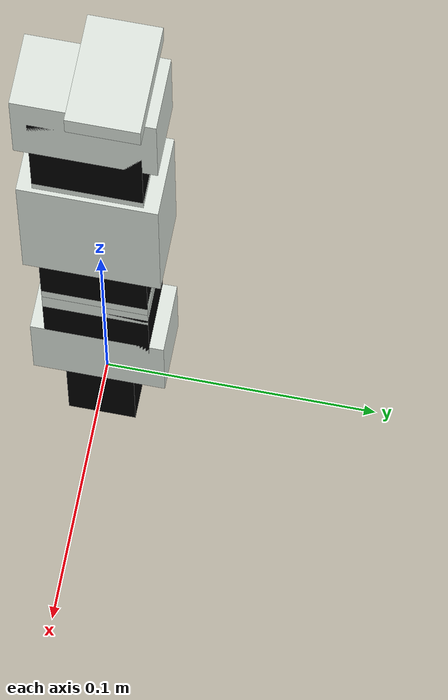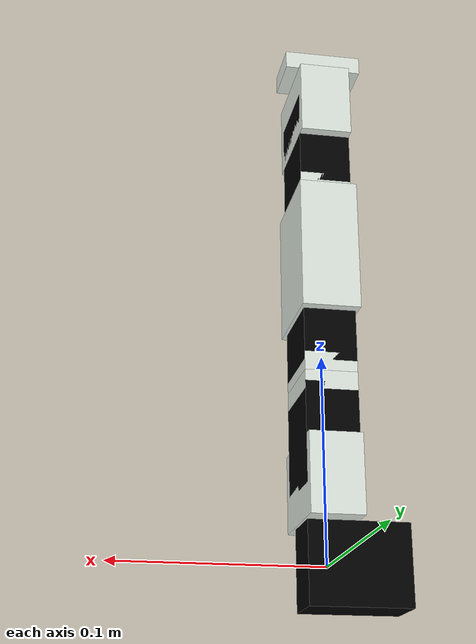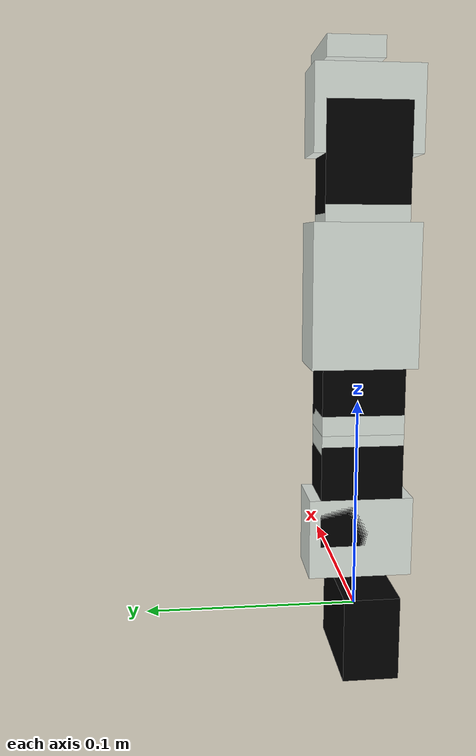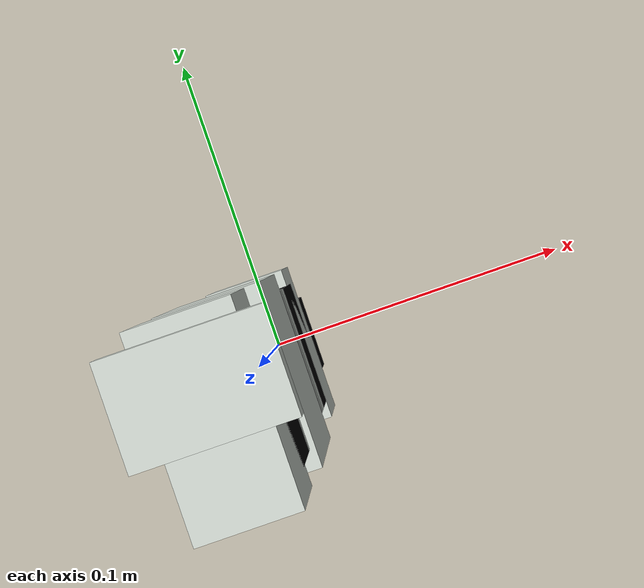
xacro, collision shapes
<?xml version="1.0"?>

<robot name="turtlebot_arm" xmlns:xacro="http://ros.org/wiki/xacro">

  <xacro:include filename="$(find turtlebot_arm_description)/urdf/arm_4dof.xacro" />

  <link name="base_link"/>

  <turtlebot_arm parent="base_link" color="white" gripper_color="green"
                 joints_vlimit="1.571" pan_llimit="-2.617" pan_ulimit="2.617">
    <origin xyz="0 0 0"/>
  </turtlebot_arm>

</robot>

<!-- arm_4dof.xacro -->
<robot xmlns:xacro="http://ros.org/wiki/xacro">
  <xacro:include filename="$(find turtlebot_arm_description)/urdf/arm_4dof_hardware.xacro"/>

  <material name="white">
    <color rgba="0.87 0.90 0.87 1.0"/>
  </material>
  <material name="black">
    <color rgba="0.0 0.0 0.0 1.0"/>
  </material>
  <material name="green">
    <color rgba="0.22 0.32 0.14 1.0"/>
  </material>

  <xacro:macro name="turtlebot_arm" params="parent color gripper_color *origin
                                            joints_vlimit pan_llimit pan_ulimit">
    <link name="arm_base_link" />
    <joint name="arm_base_joint" type="fixed">
      <insert_block name="origin" />
      <parent link="${parent}"/>
      <child link="arm_base_link" />
    </joint>

    <!-- shoulder pan joint -->
    <dynamixel_AX12_fixed parent="arm_base_link" name="arm_joint1_servo">
      <origin xyz="0 0 0" rpy="${M_PI/2} 0 ${M_PI/2}"/>
    </dynamixel_AX12_fixed>
    <bioloid_F2_pan_revolute parent="arm_joint1_servo_link" name="arm_joint1_frame1" color="${color}"
                         vlimit="${joints_vlimit}" llimit="${pan_llimit}" ulimit="${pan_ulimit}">
      <origin xyz="0 ${AX12_WIDTH/2+F2_HEIGHT} 0" rpy="${-M_PI/2} ${M_PI/2} ${M_PI}" />
    </bioloid_F2_pan_revolute>

    <!-- shoulder lift joint -->
    <dynamixel_AX12_revolute parent="arm_joint1_frame1_link" name="arm_joint2_servo"
                             vlimit="${joints_vlimit}" llimit="-1.745" ulimit="1.745">
      <origin xyz="0 0 0" rpy="0 0 0" />
    </dynamixel_AX12_revolute>
    <bioloid_F3_fixed parent="arm_joint2_servo_link" name="arm_joint2_frame1" color="${color}">
      <origin xyz="0 0 ${-AX12_HEIGHT-F10_HEIGHT+0.001}" rpy="0 ${M_PI} 0" />
    </bioloid_F3_fixed>
    <bioloid_F3_fixed parent="arm_joint2_frame1_link" name="arm_joint2_frame2" color="${color}">
      <origin xyz="0 0 0" rpy="0 ${M_PI} 0" />
    </bioloid_F3_fixed>

    <!-- elbow joint -->
    <dynamixel_AX12_fixed parent="arm_joint2_frame2_link" name="arm_joint3_servo">
      <origin xyz="0 0 ${-AX12_HEIGHT-F10_HEIGHT+0.001}" rpy="0 ${M_PI} 0" />
    </dynamixel_AX12_fixed>
    <bioloid_F4_revolute parent="arm_joint3_servo_link" name="arm_joint3_frame1" color="${color}"
                         vlimit="${joints_vlimit}" llimit="-2.617" ulimit="2.617">
      <origin xyz="0 0 0" rpy="0 0 0" />
    </bioloid_F4_revolute>
    <bioloid_F3_fixed parent="arm_joint3_frame1_link" name="arm_joint3_frame2" color="${color}">
      <origin xyz="0 0 ${F4_HEIGHT}" rpy="0 ${M_PI} 0" />
    </bioloid_F3_fixed>

    <!-- wrist joint -->
    <dynamixel_AX12_fixed parent="arm_joint3_frame2_link" name="arm_joint4_servo">
      <origin xyz="0 0 ${-AX12_HEIGHT-F10_HEIGHT+0.001}" rpy="0 ${M_PI} 0"/>
    </dynamixel_AX12_fixed>
    <bioloid_F2_revolute parent="arm_joint4_servo_link" name="arm_joint4_frame1" color="${color}"
                         vlimit="${joints_vlimit}" llimit="-1.745" ulimit="1.745">
      <origin xyz="0 0 0" rpy="0 0 0" />
    </bioloid_F2_revolute>
    <bioloid_F3_fixed parent="arm_joint4_frame1_link" name="arm_joint4_frame2" color="${color}">
      <origin xyz="0 0.008 ${F2_HEIGHT}" rpy="0 ${M_PI} ${-M_PI/2}" />
    </bioloid_F3_fixed>

    <!-- gripper -->

  </xacro:macro>
</robot>

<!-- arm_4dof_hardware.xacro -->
<robot xmlns:xacro="http://ros.org/wiki/xacro">
  <xacro:property name="M_PI" value="3.14159"/>
  <xacro:property name="M_SCALE" value="0.001"/>
  <xacro:property name="F10_HEIGHT" value="0.004"/>
  <xacro:property name="F4_HEIGHT" value="0.0525"/>
  <xacro:property name="F3_HEIGHT" value="0.009"/>
  <xacro:property name="AX12_HEIGHT" value="0.0385"/>
  <xacro:property name="AX12_WIDTH" value="0.038"/>
  <xacro:property name="F2_HEIGHT" value="0.0265"/>

  <xacro:macro name="bioloid_F10_fixed" params="parent name color *origin">
    <joint name="${name}_joint" type="fixed">
      <insert_block name="origin" />
      <parent link="${parent}"/>
      <child link="${name}_link" />
    </joint>

    <link name="${name}_link">
      <inertial>
        <mass value="0.00001" />
        <origin xyz="0 0 0" />
        <inertia ixx="1.0" ixy="0.0" ixz="0.0"
          iyy="1.0" iyz="0.0"
          izz="1.0" />
      </inertial>

      <visual>
        <origin xyz=" 0 0 0 " rpy="0 0 0" />
        <geometry>
          <mesh filename="package://turtlebot_arm_description/meshes/F10.stl" scale="${M_SCALE} ${M_SCALE} ${M_SCALE}"/>
        </geometry>
        <material name="${color}"/>
      </visual>

      <collision>
        <origin xyz="0.0 0.0 0.0" rpy="0 0 0" />
        <geometry>
          <box size="0.025 0.038 0.004"/>
        </geometry>
      </collision>
    </link>
  </xacro:macro>

  <xacro:macro name="arm_mount" params="parent name color *origin">
    <joint name="${name}_joint" type="fixed">
      <insert_block name="origin" />
      <parent link="${parent}"/>
      <child link="${name}_link" />
    </joint>

    <link name="${name}_link">
      <inertial>
        <mass value="0.00001" />
        <origin xyz="0 0 0" />
        <inertia ixx="1.0" ixy="0.0" ixz="0.0"
          iyy="1.0" iyz="0.0"
          izz="1.0" />
      </inertial>

      <visual>
        <origin xyz="-0.028 -0.0493 0.014" rpy="0.0 0.0 -${M_PI/2}" />
        <geometry>
          <mesh filename="package://turtlebot_arm_description/meshes/mount.stl" scale="${M_SCALE} ${M_SCALE} ${M_SCALE}"/>
        </geometry>
        <material name="${color}"/>
      </visual>

      <collision>
        <origin xyz="-0.01 0.0 0.0165" rpy="0.0 0.0 0.0" />
        <geometry>
          <box size="0.074 0.074 0.004"/>
        </geometry>
      </collision>
    </link>
  </xacro:macro>

  <xacro:macro name="finger_fixed" params="parent name color *origin">
    <joint name="${name}_joint" type="fixed">
      <insert_block name="origin" />
      <parent link="${parent}"/>
      <child link="${name}_link" />
    </joint>

    <link name="${name}_link">
      <inertial>
        <mass value="0.00001" />
        <origin xyz="0 0 0" />
        <inertia ixx="1.0" ixy="0.0" ixz="0.0"
          iyy="1.0" iyz="0.0"
          izz="1.0" />
      </inertial>

      <visual>
        <origin xyz=" 0 0 0 " rpy="0 0 0" />
        <geometry>
          <mesh filename="package://turtlebot_arm_description/meshes/finger.stl" scale="${M_SCALE} ${M_SCALE} ${M_SCALE}"/>
        </geometry>
        <material name="${color}"/>
      </visual>

      <collision>
        <origin xyz="0.02645 0.0 -0.00655" rpy="0 0 0" />
        <geometry>
          <box size="0.0783 0.03801 0.0193"/>
        </geometry>
      </collision>
    </link>
  </xacro:macro>

  <xacro:macro name="bioloid_F3_fixed" params="parent name color *origin">
    <joint name="${name}_joint" type="fixed">
      <insert_block name="origin" />
      <parent link="${parent}"/>
      <child link="${name}_link" />
    </joint>

    <link name="${name}_link">
      <inertial>
        <mass value="0.00001" />
        <origin xyz="0 0 0" />
        <inertia ixx="1.0" ixy="0.0" ixz="0.0"
          iyy="1.0" iyz="0.0"
          izz="1.0" />
      </inertial>

      <visual>
        <origin xyz=" 0 0 0 " rpy="0 0 0" />
        <geometry>
          <mesh filename="package://turtlebot_arm_description/meshes/F3.stl" scale="${M_SCALE} ${M_SCALE} ${M_SCALE}"/>
        </geometry>
        <material name="${color}"/>
      </visual>

      <collision>
        <origin xyz="0.0 0.0 -0.0045" rpy="0 0 0" />
        <geometry>
          <box size="0.025 0.038 0.009"/>
        </geometry>
      </collision>
    </link>
  </xacro:macro>

  <xacro:macro name="dynamixel_AX12_fixed" params="parent name *origin">
    <joint name="${name}_joint" type="fixed">
      <insert_block name="origin" />
      <parent link="${parent}"/>
      <child link="${name}_link" />
    </joint>

    <link name="${name}_link">
      <inertial>
        <mass value="0.00001" />
        <origin xyz="0 0 0" />
        <inertia ixx="1.0" ixy="0.0" ixz="0.0"
          iyy="1.0" iyz="0.0"
          izz="1.0" />
      </inertial>

      <visual>
        <origin xyz=" 0 0 0 " rpy="0 0 0" />
        <geometry>
          <mesh filename="package://turtlebot_arm_description/meshes/ax12_box.stl" scale="${M_SCALE} ${M_SCALE} ${M_SCALE}"/>
        </geometry>
        <material name="black"/>
      </visual>

      <collision>
        <origin xyz="0.0 0.0 -0.01241" rpy="0 0 0" />
        <geometry>
          <box size="0.025 0.038 0.04762"/>
        </geometry>
      </collision>
    </link>
  </xacro:macro>

  <xacro:macro name="dynamixel_AX12_revolute" params="parent name llimit ulimit vlimit *origin">
    <joint name="${name}_joint" type="revolute">
      <insert_block name="origin" />
      <axis xyz="0 1 0"/>
      <limit effort="30" velocity="${vlimit}" lower="${llimit}" upper="${ulimit}" />
      <parent link="${parent}"/>
      <child link="${name}_link" />
    </joint>

    <link name="${name}_link">
      <inertial>
        <mass value="0.00001" />
        <origin xyz="0 0 0" />
        <inertia ixx="1.0" ixy="0.0" ixz="0.0"
          iyy="1.0" iyz="0.0"
          izz="1.0" />
      </inertial>

      <visual>
        <origin xyz=" 0 0 0 " rpy="0 0 0" />
        <geometry>
          <mesh filename="package://turtlebot_arm_description/meshes/ax12_box.stl" scale="${M_SCALE} ${M_SCALE} ${M_SCALE}"/>
        </geometry>
        <material name="black"/>
      </visual>

      <collision>
        <origin xyz="0.0 0.0 -0.01241" rpy="0 0 0" />
        <geometry>
          <box size="0.025 0.038 0.04762"/>
        </geometry>
      </collision>
    </link>
  </xacro:macro>

  <xacro:macro name="bioloid_F3_revolute" params="parent name color llimit ulimit vlimit *origin">
    <joint name="${name}_joint" type="revolute">
      <insert_block name="origin" />
      <axis xyz="0 0 -1"/>
      <limit effort="30" velocity="${vlimit}" lower="${llimit}" upper="${ulimit}" />
      <parent link="${parent}"/>
      <child link="${name}_link" />
    </joint>

    <link name="${name}_link">
      <inertial>
        <mass value="0.00001" />
        <origin xyz="0 0 0" />
        <inertia ixx="1.0" ixy="0.0" ixz="0.0"
          iyy="1.0" iyz="0.0"
          izz="1.0" />
      </inertial>

      <visual>
        <origin xyz=" 0 0 0 " rpy="0 0 0" />
        <geometry>
          <mesh filename="package://turtlebot_arm_description/meshes/F3.stl" scale="${M_SCALE} ${M_SCALE} ${M_SCALE}"/>
        </geometry>
        <material name="${color}"/>
      </visual>

      <collision>
        <origin xyz="0.0 0.0 -0.0045" rpy="0 0 0" />
        <geometry>
          <box size="0.025 0.038 0.009"/>
        </geometry>
      </collision>
    </link>
  </xacro:macro>

  <xacro:macro name="bioloid_F2_pan_revolute" params="parent name color llimit ulimit vlimit *origin">
    <joint name="${name}_joint" type="revolute">
      <insert_block name="origin" />
      <axis xyz="0 0 -1"/>
      <limit effort="30" velocity="${vlimit}" lower="${llimit}" upper="${ulimit}" />
      <parent link="${parent}"/>
      <child link="${name}_link" />
    </joint>

    <link name="${name}_link">
      <inertial>
        <mass value="0.00001" />
        <origin xyz="0 0 0" />
        <inertia ixx="1.0" ixy="0.0" ixz="0.0"
          iyy="1.0" iyz="0.0"
          izz="1.0" />
      </inertial>

      <visual>
        <origin xyz=" 0 0 0 " rpy="0 0 0" />
        <geometry>
          <mesh filename="package://turtlebot_arm_description/meshes/F2.stl" scale="${M_SCALE} ${M_SCALE} ${M_SCALE}"/>
        </geometry>
        <material name="${color}"/>
      </visual>

      <collision>
        <origin xyz="0.0 0.0 0.00775" rpy="0 0 0" />
        <geometry>
          <box size="0.025 0.0485 0.0375"/>
        </geometry>
      </collision>
    </link>
  </xacro:macro>

  <xacro:macro name="bioloid_F2_revolute" params="parent name color llimit ulimit vlimit *origin">
    <joint name="${name}_joint" type="revolute">
      <insert_block name="origin" />
      <axis xyz="0 1 0"/>
      <limit effort="30" velocity="${vlimit}" lower="${llimit}" upper="${ulimit}" />
      <parent link="${parent}"/>
      <child link="${name}_link" />
    </joint>

    <link name="${name}_link">
      <inertial>
        <mass value="0.00001" />
        <origin xyz="0 0 0" />
        <inertia ixx="1.0" ixy="0.0" ixz="0.0"
          iyy="1.0" iyz="0.0"
          izz="1.0" />
      </inertial>

      <visual>
        <origin xyz=" 0 0 0 " rpy="0 0 0" />
        <geometry>
          <mesh filename="package://turtlebot_arm_description/meshes/F2.stl" scale="${M_SCALE} ${M_SCALE} ${M_SCALE}"/>
        </geometry>
        <material name="${color}"/>
      </visual>

      <collision>
        <origin xyz="0.0 0.0 0.00775" rpy="0 0 0" />
        <geometry>
          <box size="0.025 0.0485 0.0375"/>
        </geometry>
      </collision>
    </link>
  </xacro:macro>

  <xacro:macro name="bioloid_F4_revolute" params="parent name color llimit ulimit vlimit *origin">
    <joint name="${name}_joint" type="revolute">
      <insert_block name="origin" />
      <axis xyz="0 1 0"/>
      <limit effort="30" velocity="${vlimit}" lower="${llimit}" upper="${ulimit}" />
      <parent link="${parent}"/>
      <child link="${name}_link" />
    </joint>

    <link name="${name}_link">
      <inertial>
        <mass value="0.00001" />
        <origin xyz="0 0 0" />
        <inertia ixx="1.0" ixy="0.0" ixz="0.0"
          iyy="1.0" iyz="0.0"
          izz="1.0" />
      </inertial>

      <visual>
        <origin xyz=" 0 0 0 " rpy="0 0 0" />
        <geometry>
          <mesh filename="package://turtlebot_arm_description/meshes/F4.stl" scale="${M_SCALE} ${M_SCALE} ${M_SCALE}"/>
        </geometry>
        <material name="${color}"/>
      </visual>

      <collision>
        <origin xyz="0.0 0.0 0.0215" rpy="0 0 0" />
        <geometry>
          <box size="0.028 0.0485 0.065"/>
        </geometry>
      </collision>
    </link>
  </xacro:macro>

</robot>
